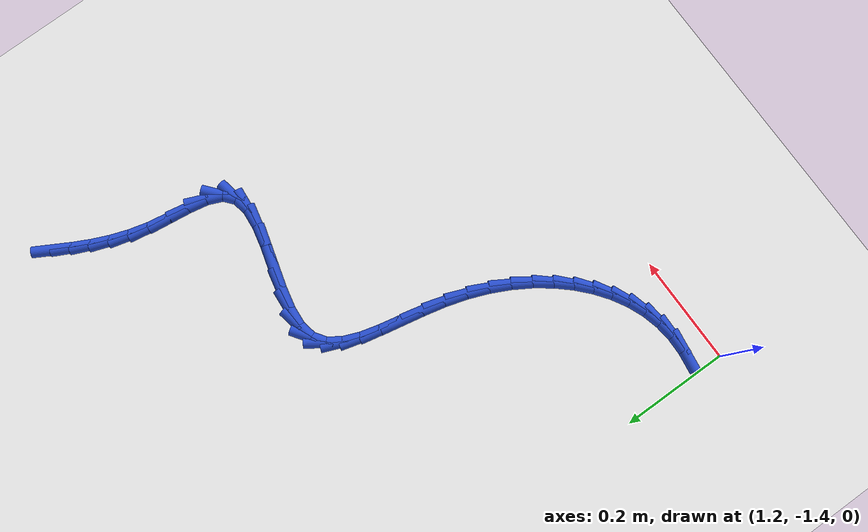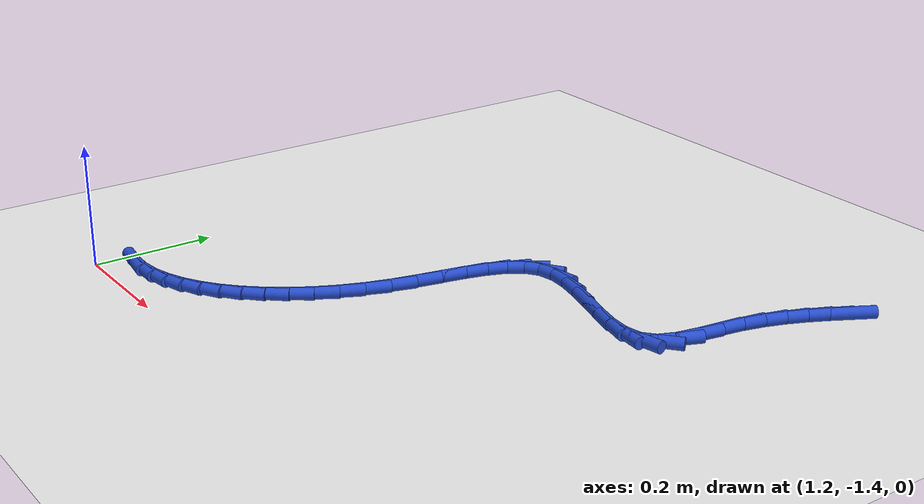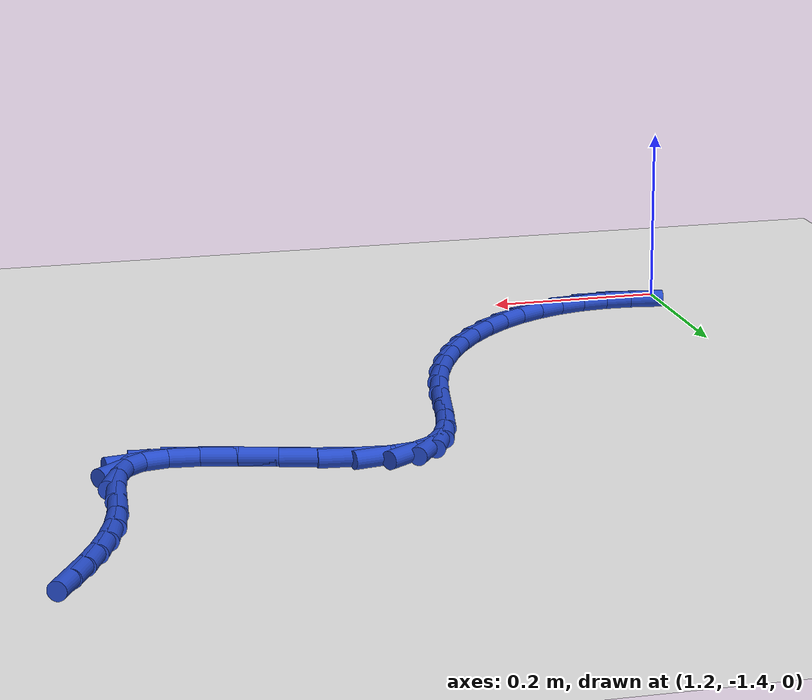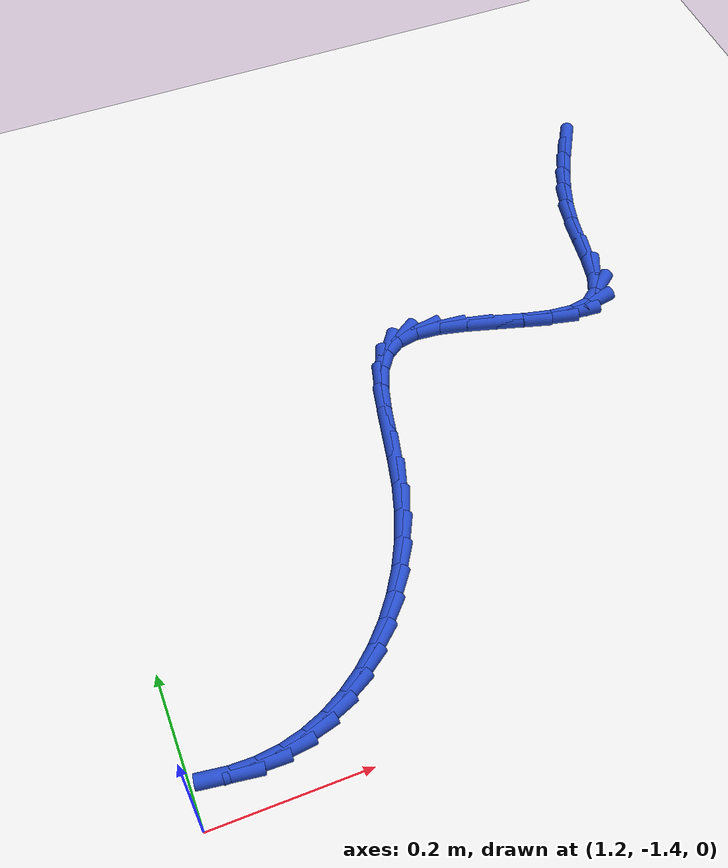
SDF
<sdf version="1.6">
 <world name="default">
  <model name="ground_plane">
   <static>1</static>
   <link name="link">
    <collision name="collision">
     <geometry><plane><normal>0 0 1</normal><size>100 100</size></plane></geometry>
     <surface><friction><ode><mu>100</mu><mu2>50</mu2></ode></friction></surface>
    </collision>
    <visual name="visual">
     <cast_shadows>0</cast_shadows>
     <geometry><plane><normal>0 0 1</normal><size>100 100</size></plane></geometry>
     <material>
      <script><uri>file://media/materials/scripts/gazebo.material</uri><name>Gazebo/WhiteGlow</name></script>
     </material>
    </visual>
   </link>
  </model>
  <model name="line">
   <link name="link_135">
    <pose>2.037620073633702 -0.5651022761452661 0.01 0 1.57 1.061851183707611</pose>
    <collision name="collision">
     <geometry><cylinder><radius>0.01</radius><length>0.08</length></cylinder></geometry>
    </collision>
    <visual name="visual">
     <material>
      <script><name>Gazebo/Blue</name><uri>file://media/materials/scripts/gazebo.material</uri></script>
     </material>
     <geometry><cylinder><radius>0.01</radius><length>0.08</length></cylinder></geometry>
    </visual>
   </link>
   <link name="link_136">
    <pose>2.021421086165685 -0.5941340396467693 0.01 0 1.57 1.1039643699759951</pose>
    <collision name="collision">
     <geometry><cylinder><radius>0.01</radius><length>0.08</length></cylinder></geometry>
    </collision>
    <visual name="visual">
     <material>
      <script><name>Gazebo/Blue</name><uri>file://media/materials/scripts/gazebo.material</uri></script>
     </material>
     <geometry><cylinder><radius>0.01</radius><length>0.08</length></cylinder></geometry>
    </visual>
   </link>
   <link name="link_137">
    <pose>2.006388859198088 -0.6239606682197268 0.01 0 1.57 1.161983698464058</pose>
    <collision name="collision">
     <geometry><cylinder><radius>0.01</radius><length>0.08</length></cylinder></geometry>
    </collision>
    <visual name="visual">
     <material>
      <script><name>Gazebo/Blue</name><uri>file://media/materials/scripts/gazebo.material</uri></script>
     </material>
     <geometry><cylinder><radius>0.01</radius><length>0.08</length></cylinder></geometry>
    </visual>
   </link>
   <link name="link_138">
    <pose>1.9929272340483615 -0.6550340652126326 0.01 0 1.57 1.2336606007361999</pose>
    <collision name="collision">
     <geometry><cylinder><radius>0.01</radius><length>0.08</length></cylinder></geometry>
    </collision>
    <visual name="visual">
     <material>
      <script><name>Gazebo/Blue</name><uri>file://media/materials/scripts/gazebo.material</uri></script>
     </material>
     <geometry><cylinder><radius>0.01</radius><length>0.08</length></cylinder></geometry>
    </visual>
   </link>
   <link name="link_139">
    <pose>1.9814400520339515 -0.6878061339739796 0.01 0 1.57 1.315650327701047</pose>
    <collision name="collision">
     <geometry><cylinder><radius>0.01</radius><length>0.08</length></cylinder></geometry>
    </collision>
    <visual name="visual">
     <material>
      <script><name>Gazebo/Blue</name><uri>file://media/materials/scripts/gazebo.material</uri></script>
     </material>
     <geometry><cylinder><radius>0.01</radius><length>0.08</length></cylinder></geometry>
    </visual>
   </link>
   <link name="link_140">
    <pose>1.9723311544723081 -0.7227287778522626 0.01 0 1.57 1.401879648151182</pose>
    <collision name="collision">
     <geometry><cylinder><radius>0.01</radius><length>0.08</length></cylinder></geometry>
    </collision>
    <visual name="visual">
     <material>
      <script><name>Gazebo/Blue</name><uri>file://media/materials/scripts/gazebo.material</uri></script>
     </material>
     <geometry><cylinder><radius>0.01</radius><length>0.08</length></cylinder></geometry>
    </visual>
   </link>
   <link name="link_141">
    <pose>1.965944564465517 -0.7601776057167411 0.01 0 1.57 1.4414126335908</pose>
    <collision name="collision">
     <geometry><cylinder><radius>0.01</radius><length>0.08</length></cylinder></geometry>
    </collision>
    <visual name="visual">
     <material>
      <script><name>Gazebo/Blue</name><uri>file://media/materials/scripts/gazebo.material</uri></script>
     </material>
     <geometry><cylinder><radius>0.01</radius><length>0.08</length></cylinder></geometry>
    </visual>
   </link>
   <link name="link_142">
    <pose>1.9609691874333712 -0.7984172249486781 0.01 0 1.57 1.3814083687900813</pose>
    <collision name="collision">
     <geometry><cylinder><radius>0.01</radius><length>0.08</length></cylinder></geometry>
    </collision>
    <visual name="visual">
     <material>
      <script><name>Gazebo/Blue</name><uri>file://media/materials/scripts/gazebo.material</uri></script>
     </material>
     <geometry><cylinder><radius>0.01</radius><length>0.08</length></cylinder></geometry>
    </visual>
   </link>
   <link name="link_143">
    <pose>1.9542669485005228 -0.8333820411782134 0.01 0 1.57 1.1697818693227067</pose>
    <collision name="collision">
     <geometry><cylinder><radius>0.01</radius><length>0.08</length></cylinder></geometry>
    </collision>
    <visual name="visual">
     <material>
      <script><name>Gazebo/Blue</name><uri>file://media/materials/scripts/gazebo.material</uri></script>
     </material>
     <geometry><cylinder><radius>0.01</radius><length>0.08</length></cylinder></geometry>
    </visual>
   </link>
   <link name="link_144">
    <pose>1.9426054768553316 -0.8608861913295516 0.01 0 1.57 0.6918744295409259</pose>
    <collision name="collision">
     <geometry><cylinder><radius>0.01</radius><length>0.08</length></cylinder></geometry>
    </collision>
    <visual name="visual">
     <material>
      <script><name>Gazebo/Blue</name><uri>file://media/materials/scripts/gazebo.material</uri></script>
     </material>
     <geometry><cylinder><radius>0.01</radius><length>0.08</length></cylinder></geometry>
    </visual>
   </link>
   <link name="link_145">
    <pose>1.9230239333518908 -0.8771093482572866 0.01 0 1.57 0.18607337920501807</pose>
    <collision name="collision">
     <geometry><cylinder><radius>0.01</radius><length>0.08</length></cylinder></geometry>
    </collision>
    <visual name="visual">
     <material>
      <script><name>Gazebo/Blue</name><uri>file://media/materials/scripts/gazebo.material</uri></script>
     </material>
     <geometry><cylinder><radius>0.01</radius><length>0.08</length></cylinder></geometry>
    </visual>
   </link>
   <link name="link_146">
    <pose>1.8955676040969818 -0.8822780306531435 0.01 0 1.57 -0.09373635714184181</pose>
    <collision name="collision">
     <geometry><cylinder><radius>0.01</radius><length>0.08</length></cylinder></geometry>
    </collision>
    <visual name="visual">
     <material>
      <script><name>Gazebo/Blue</name><uri>file://media/materials/scripts/gazebo.material</uri></script>
     </material>
     <geometry><cylinder><radius>0.01</radius><length>0.08</length></cylinder></geometry>
    </visual>
   </link>
   <link name="link_147">
    <pose>1.8621520907056122 -0.8791365759596812 0.01 0 1.57 -0.22759472969988767</pose>
    <collision name="collision">
     <geometry><cylinder><radius>0.01</radius><length>0.08</length></cylinder></geometry>
    </collision>
    <visual name="visual">
     <material>
      <script><name>Gazebo/Blue</name><uri>file://media/materials/scripts/gazebo.material</uri></script>
     </material>
     <geometry><cylinder><radius>0.01</radius><length>0.08</length></cylinder></geometry>
    </visual>
   </link>
   <link name="link_148">
    <pose>1.824721203432648 -0.8704672960906433 0.01 0 1.57 -0.2813016873867068</pose>
    <collision name="collision">
     <geometry><cylinder><radius>0.01</radius><length>0.08</length></cylinder></geometry>
    </collision>
    <visual name="visual">
     <material>
      <script><name>Gazebo/Blue</name><uri>file://media/materials/scripts/gazebo.material</uri></script>
     </material>
     <geometry><cylinder><radius>0.01</radius><length>0.08</length></cylinder></geometry>
    </visual>
   </link>
   <link name="link_149">
    <pose>1.7852187525329593 -0.859052502959775 0.01 0 1.57 -0.27958411752171425</pose>
    <collision name="collision">
     <geometry><cylinder><radius>0.01</radius><length>0.08</length></cylinder></geometry>
    </collision>
    <visual name="visual">
     <material>
      <script><name>Gazebo/Blue</name><uri>file://media/materials/scripts/gazebo.material</uri></script>
     </material>
     <geometry><cylinder><radius>0.01</radius><length>0.08</length></cylinder></geometry>
    </visual>
   </link>
   <link name="link_150">
    <pose>1.7455885482614113 -0.8476745084808195 0.01 0 1.57 -0.22259025653273096</pose>
    <collision name="collision">
     <geometry><cylinder><radius>0.01</radius><length>0.08</length></cylinder></geometry>
    </collision>
    <visual name="visual">
     <material>
      <script><name>Gazebo/Blue</name><uri>file://media/materials/scripts/gazebo.material</uri></script>
     </material>
     <geometry><cylinder><radius>0.01</radius><length>0.08</length></cylinder></geometry>
    </visual>
   </link>
   <link name="link_151">
    <pose>1.7077744008728726 -0.8391156245675216 0.01 0 1.57 -0.08662816184213998</pose>
    <collision name="collision">
     <geometry><cylinder><radius>0.01</radius><length>0.08</length></cylinder></geometry>
    </collision>
    <visual name="visual">
     <material>
      <script><name>Gazebo/Blue</name><uri>file://media/materials/scripts/gazebo.material</uri></script>
     </material>
     <geometry><cylinder><radius>0.01</radius><length>0.08</length></cylinder></geometry>
    </visual>
   </link>
   <link name="link_152">
    <pose>1.673720120622209 -0.8361581631336246 0.01 0 1.57 0.18862983216024132</pose>
    <collision name="collision">
     <geometry><cylinder><radius>0.01</radius><length>0.08</length></cylinder></geometry>
    </collision>
    <visual name="visual">
     <material>
      <script><name>Gazebo/Blue</name><uri>file://media/materials/scripts/gazebo.material</uri></script>
     </material>
     <geometry><cylinder><radius>0.01</radius><length>0.08</length></cylinder></geometry>
    </visual>
   </link>
   <link name="link_153">
    <pose>1.645360273181629 -0.8415720399972177 0.01 0 1.57 0.6074897057543908</pose>
    <collision name="collision">
     <geometry><cylinder><radius>0.01</radius><length>0.08</length></cylinder></geometry>
    </collision>
    <visual name="visual">
     <material>
      <script><name>Gazebo/Blue</name><uri>file://media/materials/scripts/gazebo.material</uri></script>
     </material>
     <geometry><cylinder><radius>0.01</radius><length>0.08</length></cylinder></geometry>
    </visual>
   </link>
   <link name="link_154">
    <pose>1.623576782624289 -0.8567156798972885 0.01 0 1.57 0.9640944347613574</pose>
    <collision name="collision">
     <geometry><cylinder><radius>0.01</radius><length>0.08</length></cylinder></geometry>
    </collision>
    <visual name="visual">
     <material>
      <script><name>Gazebo/Blue</name><uri>file://media/materials/scripts/gazebo.material</uri></script>
     </material>
     <geometry><cylinder><radius>0.01</radius><length>0.08</length></cylinder></geometry>
    </visual>
   </link>
   <link name="link_155">
    <pose>1.6072417328594357 -0.8802525053381348 0.01 0 1.57 1.1867480304372626</pose>
    <collision name="collision">
     <geometry><cylinder><radius>0.01</radius><length>0.08</length></cylinder></geometry>
    </collision>
    <visual name="visual">
     <material>
      <script><name>Gazebo/Blue</name><uri>file://media/materials/scripts/gazebo.material</uri></script>
     </material>
     <geometry><cylinder><radius>0.01</radius><length>0.08</length></cylinder></geometry>
    </visual>
   </link>
   <link name="link_156">
    <pose>1.5950010394216254 -0.910542668799826 0.01 0 1.57 1.3086269428955521</pose>
    <collision name="collision">
     <geometry><cylinder><radius>0.01</radius><length>0.08</length></cylinder></geometry>
    </collision>
    <visual name="visual">
     <material>
      <script><name>Gazebo/Blue</name><uri>file://media/materials/scripts/gazebo.material</uri></script>
     </material>
     <geometry><cylinder><radius>0.01</radius><length>0.08</length></cylinder></geometry>
    </visual>
   </link>
   <link name="link_157">
    <pose>1.5855006178454152 -0.945946322762432 0.01 0 1.57 1.365036182063392</pose>
    <collision name="collision">
     <geometry><cylinder><radius>0.01</radius><length>0.08</length></cylinder></geometry>
    </collision>
    <visual name="visual">
     <material>
      <script><name>Gazebo/Blue</name><uri>file://media/materials/scripts/gazebo.material</uri></script>
     </material>
     <geometry><cylinder><radius>0.01</radius><length>0.08</length></cylinder></geometry>
    </visual>
   </link>
   <link name="link_158">
    <pose>1.5773863836653612 -0.9848236197060188 0.01 0 1.57 1.3748203444004001</pose>
    <collision name="collision">
     <geometry><cylinder><radius>0.01</radius><length>0.08</length></cylinder></geometry>
    </collision>
    <visual name="visual">
     <material>
      <script><name>Gazebo/Blue</name><uri>file://media/materials/scripts/gazebo.material</uri></script>
     </material>
     <geometry><cylinder><radius>0.01</radius><length>0.08</length></cylinder></geometry>
    </visual>
   </link>
   <link name="link_159">
    <pose>1.5693042524160206 -1.0255347121106566 0.01 0 1.57 1.3448218947945583</pose>
    <collision name="collision">
     <geometry><cylinder><radius>0.01</radius><length>0.08</length></cylinder></geometry>
    </collision>
    <visual name="visual">
     <material>
      <script><name>Gazebo/Blue</name><uri>file://media/materials/scripts/gazebo.material</uri></script>
     </material>
     <geometry><cylinder><radius>0.01</radius><length>0.08</length></cylinder></geometry>
    </visual>
   </link>
   <link name="link_160">
    <pose>1.5599001396319498 -1.0664397524564138 0.01 0 1.57 1.2770165246617675</pose>
    <collision name="collision">
     <geometry><cylinder><radius>0.01</radius><length>0.08</length></cylinder></geometry>
    </collision>
    <visual name="visual">
     <material>
      <script><name>Gazebo/Blue</name><uri>file://media/materials/scripts/gazebo.material</uri></script>
     </material>
     <geometry><cylinder><radius>0.01</radius><length>0.08</length></cylinder></geometry>
    </visual>
   </link>
   <link name="link_161">
    <pose>1.5479323322646878 -1.1059983255444326 0.01 0 1.57 1.1949525409284765</pose>
    <collision name="collision">
     <geometry><cylinder><radius>0.01</radius><length>0.08</length></cylinder></geometry>
    </collision>
    <visual name="visual">
     <material>
      <script><name>Gazebo/Blue</name><uri>file://media/materials/scripts/gazebo.material</uri></script>
     </material>
     <geometry><cylinder><radius>0.01</radius><length>0.08</length></cylinder></geometry>
    </visual>
   </link>
   <link name="link_162">
    <pose>1.5331245395319282 -1.1435242741296827 0.01 0 1.57 1.111445555091017</pose>
    <collision name="collision">
     <geometry><cylinder><radius>0.01</radius><length>0.08</length></cylinder></geometry>
    </collision>
    <visual name="visual">
     <material>
      <script><name>Gazebo/Blue</name><uri>file://media/materials/scripts/gazebo.material</uri></script>
     </material>
     <geometry><cylinder><radius>0.01</radius><length>0.08</length></cylinder></geometry>
    </visual>
   </link>
   <link name="link_163">
    <pose>1.5156922591153676 -1.178766602058502 0.01 0 1.57 1.0256549878561212</pose>
    <collision name="collision">
     <geometry><cylinder><radius>0.01</radius><length>0.08</length></cylinder></geometry>
    </collision>
    <visual name="visual">
     <material>
      <script><name>Gazebo/Blue</name><uri>file://media/materials/scripts/gazebo.material</uri></script>
     </material>
     <geometry><cylinder><radius>0.01</radius><length>0.08</length></cylinder></geometry>
    </visual>
   </link>
   <link name="link_164">
    <pose>1.495854897491238 -1.211477771890521 0.01 0 1.57 0.9364730366402066</pose>
    <collision name="collision">
     <geometry><cylinder><radius>0.01</radius><length>0.08</length></cylinder></geometry>
    </collision>
    <visual name="visual">
     <material>
      <script><name>Gazebo/Blue</name><uri>file://media/materials/scripts/gazebo.material</uri></script>
     </material>
     <geometry><cylinder><radius>0.01</radius><length>0.08</length></cylinder></geometry>
    </visual>
   </link>
   <link name="link_165">
    <pose>1.47383186113577 -1.2414102461853682 0.01 0 1.57 0.8426477554467451</pose>
    <collision name="collision">
     <geometry><cylinder><radius>0.01</radius><length>0.08</length></cylinder></geometry>
    </collision>
    <visual name="visual">
     <material>
      <script><name>Gazebo/Blue</name><uri>file://media/materials/scripts/gazebo.material</uri></script>
     </material>
     <geometry><cylinder><radius>0.01</radius><length>0.08</length></cylinder></geometry>
    </visual>
   </link>
   <link name="link_166">
    <pose>1.4498425565251956 -1.2683164875026745 0.01 0 1.57 0.7428119445453476</pose>
    <collision name="collision">
     <geometry><cylinder><radius>0.01</radius><length>0.08</length></cylinder></geometry>
    </collision>
    <visual name="visual">
     <material>
      <script><name>Gazebo/Blue</name><uri>file://media/materials/scripts/gazebo.material</uri></script>
     </material>
     <geometry><cylinder><radius>0.01</radius><length>0.08</length></cylinder></geometry>
    </visual>
   </link>
   <link name="link_167">
    <pose>1.4241063901357476 -1.2919489584020671 0.01 0 1.57 0.6355537644659541</pose>
    <collision name="collision">
     <geometry><cylinder><radius>0.01</radius><length>0.08</length></cylinder></geometry>
    </collision>
    <visual name="visual">
     <material>
      <script><name>Gazebo/Blue</name><uri>file://media/materials/scripts/gazebo.material</uri></script>
     </material>
     <geometry><cylinder><radius>0.01</radius><length>0.08</length></cylinder></geometry>
    </visual>
   </link>
   <link name="link_168">
    <pose>1.3968427684436566 -1.3120601214431764 0.01 0 1.57 0.5195589028766852</pose>
    <collision name="collision">
     <geometry><cylinder><radius>0.01</radius><length>0.08</length></cylinder></geometry>
    </collision>
    <visual name="visual">
     <material>
      <script><name>Gazebo/Blue</name><uri>file://media/materials/scripts/gazebo.material</uri></script>
     </material>
     <geometry><cylinder><radius>0.01</radius><length>0.08</length></cylinder></geometry>
    </visual>
   </link>
   <link name="link_169">
    <pose>1.3682710979251553 -1.328402439185632 0.01 0 1.57 0.3938562831950244</pose>
    <collision name="collision">
     <geometry><cylinder><radius>0.01</radius><length>0.08</length></cylinder></geometry>
    </collision>
    <visual name="visual">
     <material>
      <script><name>Gazebo/Blue</name><uri>file://media/materials/scripts/gazebo.material</uri></script>
     </material>
     <geometry><cylinder><radius>0.01</radius><length>0.08</length></cylinder></geometry>
    </visual>
   </link>
   <link name="link_170">
    <pose>1.3386107850564744 -1.3407283741890632 0.01 0 1.57 0.25817890869616195</pose>
    <collision name="collision">
     <geometry><cylinder><radius>0.01</radius><length>0.08</length></cylinder></geometry>
    </collision>
    <visual name="visual">
     <material>
      <script><name>Gazebo/Blue</name><uri>file://media/materials/scripts/gazebo.material</uri></script>
     </material>
     <geometry><cylinder><radius>0.01</radius><length>0.08</length></cylinder></geometry>
    </visual>
   </link>
   <link name="link_171">
    <pose>1.3080812363138472 -1.3487903890130992 0.01 0 1.57 0.1143690186450437</pose>
    <collision name="collision">
     <geometry><cylinder><radius>0.01</radius><length>0.08</length></cylinder></geometry>
    </collision>
    <visual name="visual">
     <material>
      <script><name>Gazebo/Blue</name><uri>file://media/materials/scripts/gazebo.material</uri></script>
     </material>
     <geometry><cylinder><radius>0.01</radius><length>0.08</length></cylinder></geometry>
    </visual>
   </link>
   <link name="link_172">
    <pose>1.2768976801601968 -1.3523724534909387 0.01 0 1.57 -0.023073444520560715</pose>
    <collision name="collision">
     <geometry><cylinder><radius>0.01</radius><length>0.08</length></cylinder></geometry>
    </collision>
    <visual name="visual">
     <material>
      <script><name>Gazebo/Blue</name><uri>file://media/materials/scripts/gazebo.material</uri></script>
     </material>
     <geometry><cylinder><radius>0.01</radius><length>0.08</length></cylinder></geometry>
    </visual>
   </link>
   <link name="link_173">
    <pose>1.2452245603209455 -1.3516415157997919 0.01 0 1.57 -0.14329570033760491</pose>
    <collision name="collision">
     <geometry><cylinder><radius>0.01</radius><length>0.08</length></cylinder></geometry>
    </collision>
    <visual name="visual">
     <material>
      <script><name>Gazebo/Blue</name><uri>file://media/materials/scripts/gazebo.material</uri></script>
     </material>
     <geometry><cylinder><radius>0.01</radius><length>0.08</length></cylinder></geometry>
    </visual>
   </link>
  </model>
 </world>
</sdf>
